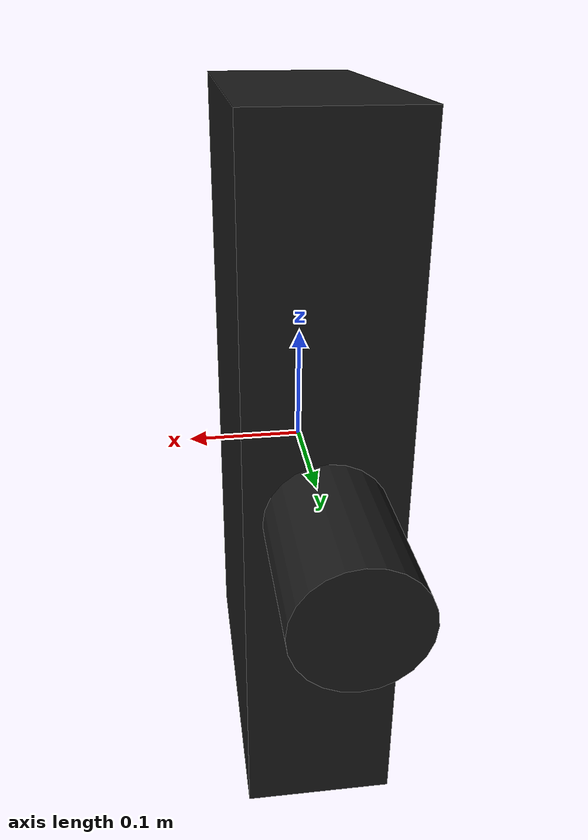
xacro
<?xml version="1.0"?>
<robot xmlns:sensor="http://playerstage.sourceforge.net/gazebo/xmlschema/#sensor"
	 xmlns:controller="http://playerstage.sourceforge.net/gazebo/xmlschema/#controller"
	 xmlns:interface="http://playerstage.sourceforge.net/gazebo/xmlschema/#interface"
     xmlns:xacro="http://ros.org/wiki/xacro"
	 name="human">

  <xacro:property name="M_PI" value="3.14159"/>
  <xacro:property name="M_PI_2" value="1.570795"/>
  <xacro:property name="ARM_MASS" value="1.0"/>

	<xacro:macro name="black">
		<material name="black">
			<color rgba="0.1 0.1 0.1 0.9"/>
		</material>
	</xacro:macro>

	<xacro:macro name="white">
		<material name="white">
			<color rgba="0.8 0.8 0.8 0.9"/>
		</material>
	</xacro:macro>

  <xacro:macro name="default_gazebo" params="name material">
 		<gazebo reference="${name}">
			<material>${material}</material>
			<selfCollide>false</selfCollide>
			<turnGravityOff>false</turnGravityOff>
		  <mu1 value="1.0" />
		  <mu2 value="1.0" />
		  <kp  value="1000000.0" />
		  <kd  value="1000.0" />
		</gazebo>
  </xacro:macro>

  <xacro:macro name="default_inertial" params="mass">
  	<inertial>
	  	<mass value="${mass}" />
		  <inertia ixx="0.001" ixy="0.0" ixz="0.0"
                   iyy="0.001" iyz="0.0"
                   izz="0.001" />
		</inertial>
  </xacro:macro>

	<xacro:macro name="shape_cylinder" params="name l r xyz rpy mass material *rviz_color">
		<link name="${name}">
			<visual>
				<origin xyz="${xyz}" rpy="${rpy}" />
				<geometry>
					<cylinder length="${l}" radius="${r}" />
				</geometry>
			  <xacro:insert_block name="rviz_color" />
      </visual>
      <collision>
				<origin xyz="${xyz}" rpy="${rpy}" />
				<geometry>
					<cylinder length="${l}" radius="${r}" />
				</geometry>
      </collision>
      <xacro:default_inertial mass="${mass}" />
    </link>
    <xacro:default_gazebo name="${name}" material="${material}" />
	</xacro:macro>

	<xacro:macro name="shape_sphere" params="name r xyz rpy mass material *rviz_color">
		<link name="${name}">
			<visual>
				<origin xyz="${xyz}" rpy="${rpy}" />
				<geometry>
					<sphere radius="${r}" />
				</geometry>
			  <xacro:insert_block name="rviz_color" />
      </visual>
      <collision>
				<origin xyz="${xyz}" rpy="${rpy}" />
				<geometry>
					<sphere radius="${r}" />
				</geometry>
      </collision>
      <xacro:default_inertial mass="${mass}" />
    </link>
    <xacro:default_gazebo name="${name}" material="${material}" />
	</xacro:macro>

	<xacro:macro name="shape_box" params="name lwh xyz rpy mass material *rviz_color">
		<link name="${name}">
			<visual>
				<origin xyz="${xyz}" rpy="${rpy}" />
				<geometry>
					<box size="${lwh}" />
				</geometry>
			  <xacro:insert_block name="rviz_color" />
      </visual>
      <collision>
				<origin xyz="${xyz}" rpy="${rpy}" />
					<geometry>
						<box size="${lwh}" />
					</geometry>
      </collision>
      <xacro:default_inertial mass="${mass}" />
    </link>
    <xacro:default_gazebo name="${name}" material="${material}" />
	</xacro:macro>

	  <!--xacro:insert_block name="rviz_color" /-->

  <xacro:shape_box name="base_footprint" lwh="0 0 0" xyz="0 0 0" rpy="0 0 0" mass="0.001" material="Gazebo/FlatBlack">
    <xacro:black />
  </xacro:shape_box>

  <xacro:shape_box name="torso_x" lwh="0.0 0.0 0.0" xyz="0 0 0" rpy="0 0 0" mass="0.001" material="Gazebo/FlatBlack">
		<xacro:black />
  </xacro:shape_box>

  <xacro:shape_box name="torso_y" lwh="0.0 0.0 0.0" xyz="0 0 0" rpy="0 0 0" mass="0.001" material="Gazebo/FlatBlack">
		<xacro:black />
  </xacro:shape_box>

  <xacro:shape_box name="torso_z" lwh="0.0 0.0 0.0" xyz="0 0 0" rpy="0 0 0" mass="0.001" material="Gazebo/FlatBlack">
		<xacro:black />
  </xacro:shape_box>

  <joint name="base_footprint_to_torso_x" type="prismatic"><!-- fixed -->
    <parent link="base_footprint"/>
    <child link="torso_x"/>
    <origin xyz="0 0 0" rpy="0 0 0"/>
    <axis xyz="1 0 0" />
  </joint>

  <joint name="torso_x_to_torso_y" type="prismatic">
    <parent link="torso_x"/>
    <child link="torso_y"/>
    <origin xyz="0 0 0" rpy="0 0 0" />
    <axis xyz="0 1 0" />
  </joint>

  <joint name="torso_y_to_torso_z" type="prismatic">
    <parent link="torso_y"/>
    <child link="torso_z"/>
    <origin xyz="0 0 0" rpy="0 0 0" />
    <axis xyz="0 0 1" />
  </joint>

  <xacro:shape_box name="torso_yaw" lwh="0.0 0.0 0.0" xyz="0 0 0" rpy="0 0 0" mass="0.001" material="Gazebo/FlatBlack">
		<xacro:black />
  </xacro:shape_box>

  <xacro:shape_box name="torso_pitch" lwh="0.0 0.0 0.0" xyz="0 0 0" rpy="0 0 0" mass="0.001" material="Gazebo/FlatBlack">
		<xacro:black />
  </xacro:shape_box>

  <xacro:shape_box name="torso_roll" lwh="0.30 0.60 0.13" xyz="0 0 0" rpy="0 0 0" mass="0.001" material="Gazebo/FlatBlack">
		<xacro:black />
  </xacro:shape_box>

  <joint name="torso_z_to_yaw" type="revolute">
    <axis xyz="0 0 1" />
    <limit lower="0.0" upper="0.0" effort="100" velocity="5" />
    <parent link="torso_z"/>
    <origin xyz="0 0 0" rpy="${M_PI_2} 0 ${M_PI_2}" />
    <child link="torso_yaw"/>
  </joint>

  <joint name="torso_yaw_to_pitch" type="revolute">
    <axis xyz="0 1 0" />
    <limit lower="0.0" upper="0.0" effort="100" velocity="5" />
    <parent link="torso_yaw"/>
    <origin xyz="0 0 0" rpy="0 0 0" />
    <child link="torso_pitch"/>
  </joint>

  <joint name="torso_pitch_to_roll" type="revolute">
    <axis xyz="1 0 0" />
    <limit lower="0.0" upper="0.0" effort="100" velocity="5" />
    <parent link="torso_pitch"/>
    <origin xyz="0 0 0" rpy="0 0 0" />
    <child link="torso_roll"/>
  </joint>

  <xacro:shape_box name="r_sh_x" lwh="0.0 0.0 0.0" xyz="0 0 0" rpy="0 0 0" mass="0.001" material="Gazebo/FlatBlack">
		<xacro:black />
  </xacro:shape_box>

  <xacro:shape_box name="r_sh_y" lwh="0.0 0.0 0.0" xyz="0 0 0" rpy="0 0 0" mass="0.001" material="Gazebo/FlatBlack">
		<xacro:black />
  </xacro:shape_box>

  <xacro:shape_box name="r_sh_z" lwh="0.0 0.0 0.0" xyz="0 0 0" rpy="0 0 0" mass="0.001" material="Gazebo/FlatBlack">
		<xacro:black />
  </xacro:shape_box>

  <joint name="torso_roll_to_r_sh_x" type="prismatic">
    <parent link="torso_roll"/>
    <child link="r_sh_x"/>
    <origin xyz="0 0 0" rpy="0 0 0" />
    <axis xyz="1 0 0" />
  </joint>

  <joint name="r_sh_x_to_r_sh_y" type="prismatic">
    <parent link="r_sh_x"/>
    <child link="r_sh_y"/>
    <origin xyz="0 0 0" rpy="0 0 0" />
    <axis xyz="0 1 0" />
  </joint>

  <joint name="r_sh_y_to_r_sh_z" type="prismatic">
    <parent link="r_sh_y"/>
    <child link="r_sh_z"/>
    <origin xyz="0 0 0" rpy="0 0 0" />
    <axis xyz="0 0 1" />
  </joint>

  <xacro:shape_box name="r_sh_yaw" lwh="0.0 0.0 0.0" xyz="0 0 0" rpy="0 0 0" mass="0.001" material="Gazebo/FlatBlack">
		<xacro:black />
  </xacro:shape_box>

  <xacro:shape_box name="r_sh_pitch" lwh="0.0 0.0 0.0" xyz="0 0 0" rpy="0 0 0" mass="0.001" material="Gazebo/FlatBlack">
		<xacro:black />
  </xacro:shape_box>

  <xacro:shape_sphere name="r_sh_roll" r="0.04" xyz="0 0 0" rpy="0 0 0" mass="0.001" material="Gazebo/FlatWhite">
		<xacro:white />
  </xacro:shape_sphere>

  <joint name="r_sh_z_to_yaw" type="revolute">
    <axis xyz="0 0 1" />
    <limit lower="0.0" upper="0.0" effort="100" velocity="5" />
    <parent link="r_sh_z"/>
    <origin xyz="0 0 0" rpy="0 0 0" />
    <child link="r_sh_yaw"/>
  </joint>

  <joint name="r_sh_yaw_to_pitch" type="revolute">
    <axis xyz="0 1 0" />
    <limit lower="0.0" upper="0.0" effort="100" velocity="5" />
    <parent link="r_sh_yaw"/>
    <origin xyz="0 0 0" rpy="0 0 0" />
    <child link="r_sh_pitch"/>
  </joint>

  <joint name="r_sh_pitch_to_roll" type="revolute">
    <axis xyz="1 0 0" />
    <limit lower="0.0" upper="0.0" effort="100" velocity="5" />
    <parent link="r_sh_pitch"/>
    <origin xyz="0 0 0" rpy="0 0 0" />
    <child link="r_sh_roll"/>
  </joint>

  <!-- ELBOW -->
  <xacro:shape_box name="r_el_x" lwh="0.0 0.0 0.0" xyz="0 0 0" rpy="0 0 0" mass="0.001" material="Gazebo/FlatBlack">
		<xacro:black />
  </xacro:shape_box>

  <xacro:shape_box name="r_el_y" lwh="0.0 0.0 0.0" xyz="0 0 0" rpy="0 0 0" mass="0.001" material="Gazebo/FlatBlack">
		<xacro:black />
  </xacro:shape_box>

  <xacro:shape_box name="r_el_z" lwh="0.0 0.0 0.0" xyz="0 0 0" rpy="0 0 0" mass="0.001" material="Gazebo/FlatBlack">
		<xacro:black />
  </xacro:shape_box>

  <joint name="r_sh_roll_to_r_el_x" type="prismatic">
    <parent link="r_sh_roll"/>
    <child link="r_el_x"/>
    <origin xyz="0 0 0" rpy="0 0 0" />
    <axis xyz="1 0 0" />
  </joint>

  <joint name="r_el_x_to_r_el_y" type="prismatic">
    <parent link="r_el_x"/>
    <child link="r_el_y"/>
    <origin xyz="0 0 0" rpy="0 0 0" />
    <axis xyz="0 1 0" />
  </joint>

  <joint name="r_el_y_to_r_el_z" type="prismatic">
    <parent link="r_el_y"/>
    <child link="r_el_z"/>
    <origin xyz="0 0 0" rpy="0 0 0" />
    <axis xyz="0 0 1" />
  </joint>

  <xacro:shape_box name="r_el_yaw" lwh="0.0 0.0 0.0" xyz="0 0 0" rpy="0 0 0" mass="0.001" material="Gazebo/FlatBlack">
		<xacro:black />
  </xacro:shape_box>

  <xacro:shape_box name="r_el_pitch" lwh="0.0 0.0 0.0" xyz="0 0 0" rpy="0 0 0" mass="0.001" material="Gazebo/FlatBlack">
		<xacro:black />
  </xacro:shape_box>

  <xacro:shape_sphere name="r_el_roll" r="0.04" xyz="0 0 0" rpy="0 0 0" mass="0.001" material="Gazebo/FlatWhite">
		<xacro:white />
  </xacro:shape_sphere>

  <joint name="r_el_z_to_yaw" type="revolute">
    <axis xyz="0 0 1" />
    <limit lower="0.0" upper="0.0" effort="100" velocity="5" />
    <parent link="r_el_z"/>
    <origin xyz="0 0 0" rpy="0 0 0" />
    <child link="r_el_yaw"/>
  </joint>

  <joint name="r_el_yaw_to_pitch" type="revolute">
    <axis xyz="0 1 0" />
    <limit lower="0.0" upper="0.0" effort="100" velocity="5" />
    <parent link="r_el_yaw"/>
    <origin xyz="0 0 0" rpy="0 0 0" />
    <child link="r_el_pitch"/>
  </joint>

  <joint name="r_el_pitch_to_roll" type="revolute">
    <axis xyz="1 0 0" />
    <limit lower="0.0" upper="0.0" effort="100" velocity="5" />
    <parent link="r_el_pitch"/>
    <origin xyz="0 0 0" rpy="0 0 0" />
    <child link="r_el_roll"/>
  </joint>

  <xacro:shape_cylinder name="r_upper_arm" l="0.28" r="0.05" xyz="0 0 0" rpy="0 0 0" mass="0.001" material="Gazebo/FlatBlack">
		<xacro:black />
  </xacro:shape_cylinder>

  <joint name="r_sh_roll_to_r_upper_arm" type="continuous">
    <parent link="r_sh_roll"/>
    <child link="r_upper_arm"/>
    <origin xyz="0.14 0 0" rpy="0 ${M_PI_2} 0" />
  </joint>

  <xacro:shape_cylinder name="r_fore_arm" l="0.28" r="0.05" xyz="0 0 0" rpy="0 0 0" mass="0.001" material="Gazebo/FlatBlack">
		<xacro:black />
  </xacro:shape_cylinder>

  <joint name="r_el_roll_to_r_fore_arm" type="continuous">
    <parent link="r_el_roll"/>
    <child link="r_fore_arm"/>
    <origin xyz="0.14 0 0" rpy="0 ${M_PI_2} 0" />
  </joint>

  <!-- HAND -->
  <xacro:shape_box name="r_hd_x" lwh="0.0 0.0 0.0" xyz="0 0 0" rpy="0 0 0" mass="0.001" material="Gazebo/FlatBlack">
		<xacro:black />
  </xacro:shape_box>

  <xacro:shape_box name="r_hd_y" lwh="0.0 0.0 0.0" xyz="0 0 0" rpy="0 0 0" mass="0.001" material="Gazebo/FlatBlack">
		<xacro:black />
  </xacro:shape_box>

  <xacro:shape_sphere name="r_hd_z" r="0.04" xyz="0 0 0" rpy="0 0 0" mass="0.001" material="Gazebo/FlatWhite">
		<xacro:white />
  </xacro:shape_sphere>

  <joint name="r_el_roll_to_r_hd_x" type="prismatic">
    <parent link="r_el_roll"/>
    <child link="r_hd_x"/>
    <origin xyz="0 0 0" rpy="0 0 0" />
    <axis xyz="1 0 0" />
  </joint>

  <joint name="r_hd_x_to_r_hd_y" type="prismatic">
    <parent link="r_hd_x"/>
    <child link="r_hd_y"/>
    <origin xyz="0 0 0" rpy="0 0 0" />
    <axis xyz="0 1 0" />
  </joint>

  <joint name="r_hd_y_to_r_hd_z" type="prismatic">
    <parent link="r_hd_y"/>
    <child link="r_hd_z"/>
    <origin xyz="0 0 0" rpy="0 0 0" />
    <axis xyz="0 0 1" />
  </joint>

</robot>
